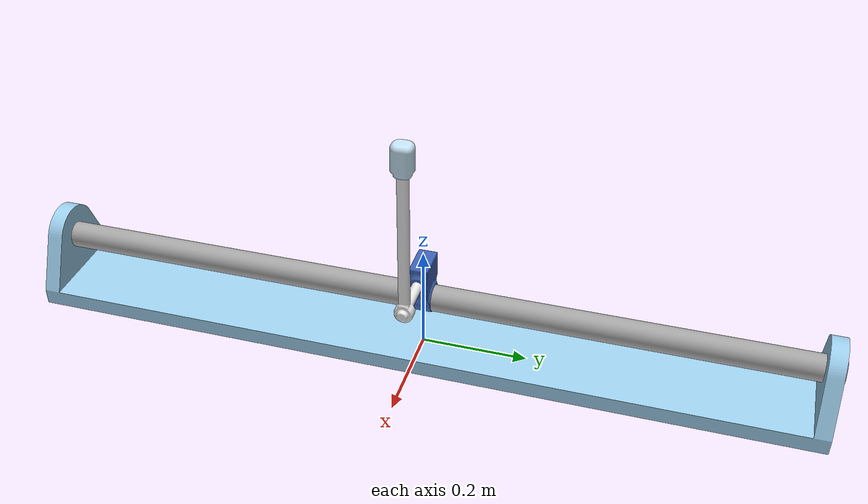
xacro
<?xml version="1.0" ?>
<!-- Generated using onshape-to-robot -->
<!-- Onshape document_id: f319bd124de4579be6a3665e -->
<robot xml:xacro="http://www.ros.org/wiki/xacro">

  <link name="base_footprint" />
  <joint name="base_joint" type="fixed">
    <parent link="base_footprint"/>
    <child link="base_link"/>
    <origin xyz="0 0 0" rpy="0 0 0"/>
  </joint>

  <!-- Link base_link -->
  <link name="base_link">
    <inertial>
      <origin xyz="-0 -0 0.0214972" rpy="0 0 0"/>
      <mass value="78.1762"/>
      <inertia ixx="17.3599" ixy="-0" ixz="0" iyy="0.29824" iyz="0" izz="17.5649"/>
    </inertial>
    <!-- Part base_link -->
    <visual>
      <origin xyz="0 0 0" rpy="0 -0 0"/>
      <geometry>
        <mesh filename="package://core_description/meshes/inverted_pendulum/base_link.stl"/>
      </geometry>
      <material name="base_link_material">
        <color rgba="0.615686 0.811765 0.929412 1"/>
      </material>
    </visual>
    <collision>
      <origin xyz="0 0 0" rpy="0 -0 0"/>
      <geometry>
        <mesh filename="package://core_description/meshes/inverted_pendulum/base_link.stl"/>
      </geometry>
    </collision>
  </link>
  <!-- Link rod_link -->
  <link name="rod_link">
    <inertial>
      <origin xyz="-0 0 0.75" rpy="0 0 0"/>
      <mass value="23.3365"/>
      <inertia ixx="4.46119" ixy="0" ixz="0" iyy="4.46119" iyz="0" izz="0.00732012"/>
    </inertial>
    <!-- Part rod_link -->
    <visual>
      <origin xyz="0 0.105114 0.75" rpy="1.5708 -0 0"/>
      <geometry>
        <mesh filename="package://core_description/meshes/inverted_pendulum/rod_link.stl"/>
      </geometry>
      <material name="rod_link_material">
        <color rgba="0.647059 0.647059 0.647059 1"/>
      </material>
    </visual>
    <collision>
      <origin xyz="0 0.105114 0.75" rpy="1.5708 -0 0"/>
      <geometry>
        <mesh filename="package://core_description/meshes/inverted_pendulum/rod_link.stl"/>
      </geometry>
    </collision>
  </link>
  <!-- Link slider_motor_link -->
  <link name="slider_motor_link">
    <inertial>
      <origin xyz="0.00440694 -0.0470208 1.2297e-08" rpy="0 0 0"/>
      <mass value="1.32021"/>
      <inertia ixx="0.000861703" ixy="-1.51432e-05" ixz="3.32e-10" iyy="0.000684313" iyz="1.39e-10" izz="0.00126081"/>
    </inertial>
    <!-- Part slider_motor_link -->
    <visual>
      <origin xyz="0 0.105114 0" rpy="1.5708 -0 0"/>
      <geometry>
        <mesh filename="package://core_description/meshes/inverted_pendulum/slider_motor_link.stl"/>
      </geometry>
      <material name="slider_motor_link_material">
        <color rgba="0.231373 0.380392 0.705882 1"/>
      </material>
    </visual>
    <collision>
      <origin xyz="0 0.105114 0" rpy="1.5708 -0 0"/>
      <geometry>
        <mesh filename="package://core_description/meshes/inverted_pendulum/slider_motor_link.stl"/>
      </geometry>
    </collision>
  </link>
  <!-- Link shaft_link -->
  <link name="shaft_link">
    <inertial>
      <origin xyz="-2.81e-10 -0.0993034 -0.0740094" rpy="0 0 0"/>
      <mass value="0.6"/>
      <inertia ixx="0.00589234" ixy="1.1e-11" ixz="1e-12" iyy="0.000270452" iyz="-0.000476096" izz="0.00566495"/>
    </inertial>
    <!-- Part shaft_link -->
    <visual>
      <origin xyz="0 0.156433 0.0365357" rpy="1.5708 1.5708 0"/>
      <geometry>
        <mesh filename="package://core_description/meshes/inverted_pendulum/shaft_link.stl"/>
      </geometry>
      <material name="shaft_link_material">
        <color rgba="0.917647 0.917647 0.917647 1"/>
      </material>
    </visual>
    <collision>
      <origin xyz="0 0.156433 0.0365357" rpy="1.5708 1.5708 0"/>
      <geometry>
        <mesh filename="package://core_description/meshes/inverted_pendulum/shaft_link.stl"/>
      </geometry>
    </collision>
  </link>
  <!-- Link weight_link -->
  <link name="weight_link">
    <inertial>
      <origin xyz="-0 -0 -0.0222886" rpy="0 0 0"/>
      <mass value="0.7"/>
      <inertia ixx="0.00023716" ixy="0" ixz="0" iyy="0.000223667" iyz="0" izz="0.00013504"/>
    </inertial>
    <!-- Part weight_link -->
    <visual>
      <origin xyz="-0.118536 -0 0.446433" rpy="3.14159 -0 0"/>
      <geometry>
        <mesh filename="package://core_description/meshes/inverted_pendulum/weight_link.stl"/>
      </geometry>
      <material name="weight_link_material">
        <color rgba="0.768627 0.886275 0.952941 1"/>
      </material>
    </visual>
    <collision>
      <origin xyz="-0.118536 -0 0.446433" rpy="3.14159 -0 0"/>
      <geometry>
        <mesh filename="package://core_description/meshes/inverted_pendulum/weight_link.stl"/>
      </geometry>
    </collision>
  </link>
  <!-- Joint from shaft_link to weight_link -->
  <joint name="weight_joint" type="fixed">
    <origin xyz="-0 -0.29 -0.082" rpy="-1.5708 1.5708 0"/>
    <parent link="shaft_link"/>
    <child link="weight_link"/>
    <axis xyz="0 0 1"/>
    <limit effort="10" velocity="10"/>
  </joint>
  <!-- Joint from slider_motor_link to shaft_link -->
  <joint name="sensor_rotor_joint" type="revolute">
    <origin xyz="0.0365357 -0.0513191 0" rpy="-0 -1.5708 0"/>
    <parent link="slider_motor_link"/>
    <child link="shaft_link"/>
    <axis xyz="0 0 1"/>
    <limit effort="10" velocity="10" lower="-3.141592653589793" upper="3.141592653589793"/>
  </joint>
  <!-- Joint from rod_link to slider_motor_link -->
  <joint name="slider_joint" type="prismatic">
    <origin xyz="0 0 0.75" rpy="0 -0 0"/>
    <parent link="rod_link"/>
    <child link="slider_motor_link"/>
    <axis xyz="0 0 1"/>
    <limit effort="10" velocity="10" lower="-0.65" upper="0.65"/>
  </joint>
  <!-- Joint from base_link to rod_link -->
  <joint name="rod_base_joint" type="fixed">
    <origin xyz="-0 -0.75 0.105114" rpy="-1.5708 -0 0"/>
    <parent link="base_link"/>
    <child link="rod_link"/>
    <axis xyz="0 0 1"/>
    <limit effort="10" velocity="10"/>
  </joint>
</robot>
